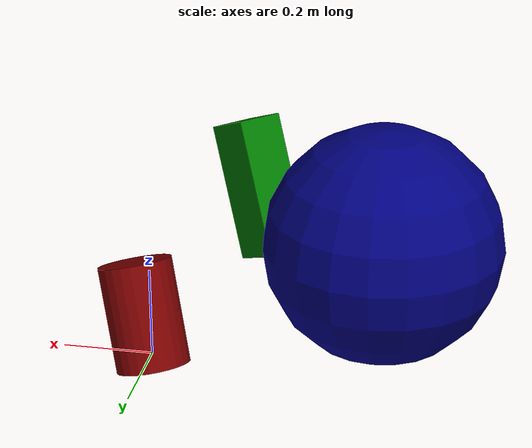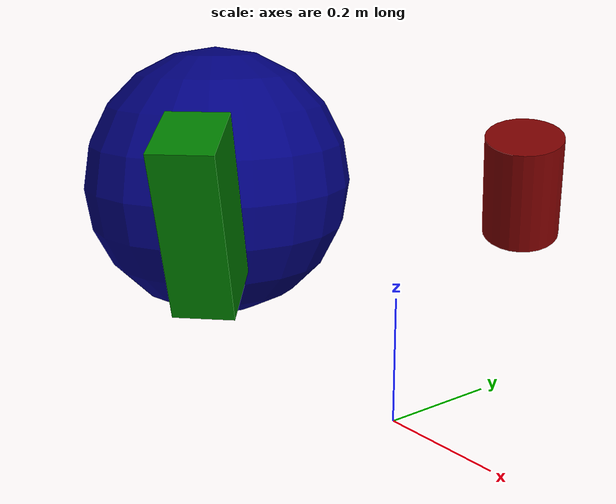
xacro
<robot name="payload" xmlns:xacro="http://ros.org/wiki/xacro">
<link name="payload3">
  <visual name="visual">
    <origin rpy="${radians(22.5)} 0 ${radians(45)}" xyz="-0.2 -0.22 0.32"/>
    <geometry><box size="0.1 0.12 0.30"/></geometry>
    <material name="cube">
      <color rgba="0 0.5 0 1"/>
    </material>
  </visual>
  <visual name="visual2">
    <origin rpy="${radians(20)} 0 ${radians(40)}" xyz="-0.1 0.4 0.31"/>
    <geometry><cylinder radius="0.07" length="0.2"/></geometry>
    <material name="cylinder">
      <color rgba="0.5 0 0 1"/>
    </material>
  </visual>
  <visual name="visual3">
    <origin rpy="0 0 0" xyz="-0.5 0 0.305"/>
    <geometry><sphere radius="0.25"/></geometry>
    <material name="sphere">
      <color rgba="0 0 0.5 1"/>
    </material>
  </visual>
  <collision name="collision">
    <origin rpy="${radians(22.5)} 0 ${radians(45)}" xyz="-0.201 -0.221 0.321"/>
    <geometry><box size="0.11 0.121 0.31"/></geometry>
  </collision>
  <collision name="collision2">
    <origin rpy="${radians(20)} 0 ${radians(40)}" xyz="-0.101 0.401 0.311"/>
    <geometry><cylinder radius="0.071" length="0.201"/></geometry>
  </collision>
  <collision name="collision3">
    <origin rpy="0 0 0" xyz="-0.501 0.001 0.306"/>
    <geometry><sphere radius="0.251"/></geometry>
  </collision>
</link>
</robot>
